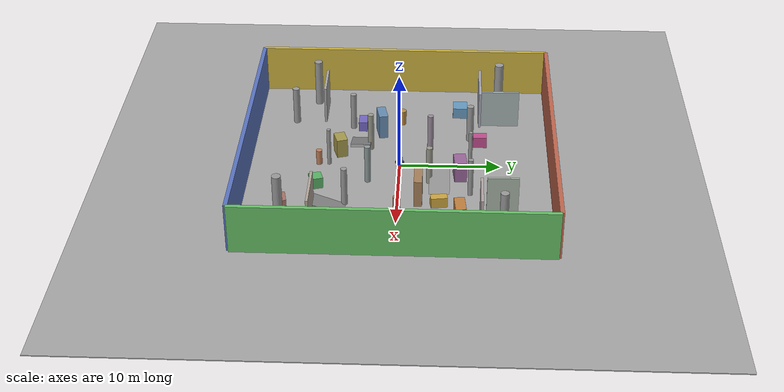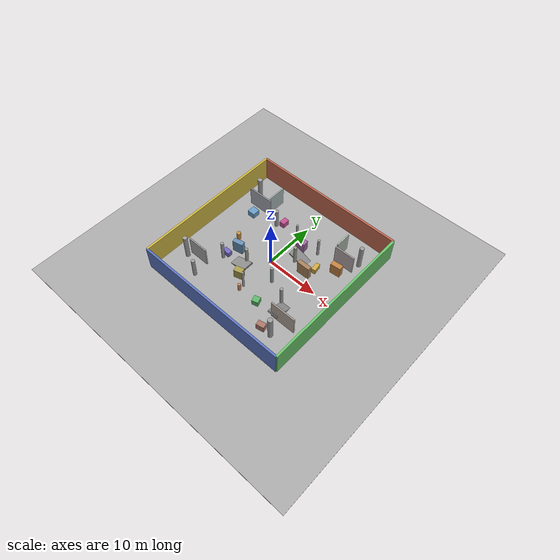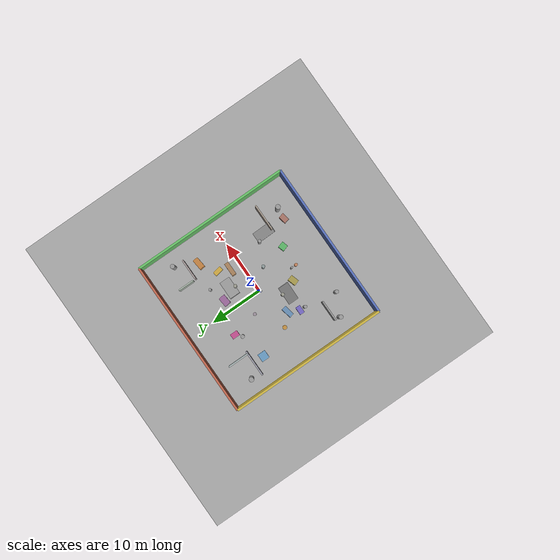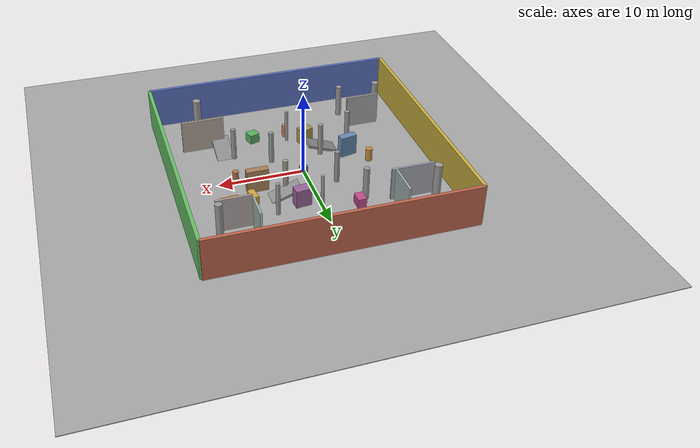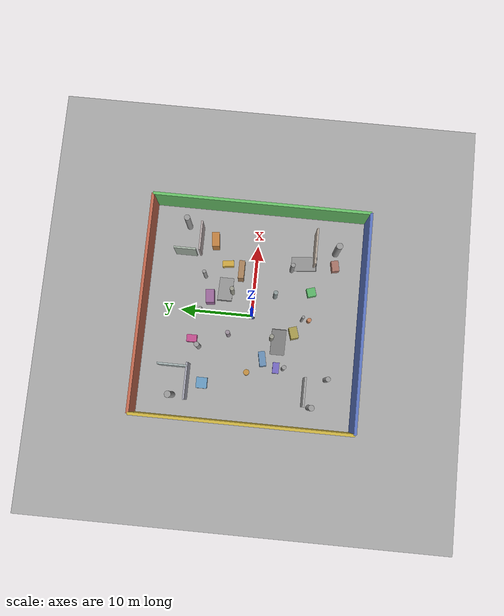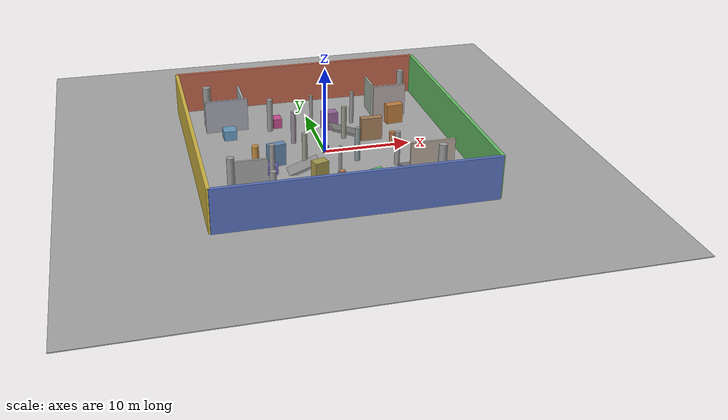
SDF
<sdf version="1.6">
  <world name="factory_open">
    <physics name="1ms" type="ode">
      <max_step_size>0.001</max_step_size>
      <real_time_factor>1.0</real_time_factor>
      <real_time_update_rate>1000</real_time_update_rate>
    </physics>
    <plugin filename="gz-sim-physics-system" name="gz::sim::systems::Physics"/>
    <plugin filename="gz-sim-sensors-system" name="gz::sim::systems::Sensors">
      <render_engine>ogre2</render_engine>
    </plugin>
    <plugin filename="gz-sim-scene-broadcaster-system" name="gz::sim::systems::SceneBroadcaster"/>
    <plugin filename="gz-sim-user-commands-system" name="gz::sim::systems::UserCommands"/>
    <plugin filename="gz-sim-imu-system" name="gz::sim::systems::Imu"/>
    <gravity>0 0 -9.81</gravity>
    <light type="directional" name="sun">
      <cast_shadows>true</cast_shadows><pose>0 0 15 0 0 0</pose>
      <diffuse>0.9 0.9 0.9</diffuse><direction>-0.4 0.2 -0.9</direction>
    </light>
    <model name="ground"><static>true</static>
      <link name="l"><collision name="c"><geometry><box><size>60 60 0.1</size></box></geometry></collision>
        <visual name="v"><geometry><box><size>60 60 0.1</size></box></geometry>
          <material><ambient>0.5 0.5 0.5</ambient><diffuse>0.65 0.65 0.65</diffuse></material></visual></link></model>

<!-- ================================================================
     布局: 30×30 围墙封闭 | 十字主走廊 | 四个开放房间区
     每个房间区有至少2个开口, 保证机器人可通行
================================================================ -->

<!-- ====== 外围围墙 (封闭边界) ====== -->
<model name="wall_n"><static>true</static><pose>0 15 2.5 0 0 0</pose>
  <link name="l"><collision name="c"><geometry><box><size>30 0.4 5</size></box></geometry></collision>
    <visual name="v"><geometry><box><size>30 0.4 5</size></box></geometry>
      <material><ambient>0.7 0.35 0.25</ambient><diffuse>0.75 0.4 0.3</diffuse></material></visual></link></model>
<model name="wall_s"><static>true</static><pose>0 -15 2.5 0 0 0</pose>
  <link name="l"><collision name="c"><geometry><box><size>30 0.4 5</size></box></geometry></collision>
    <visual name="v"><geometry><box><size>30 0.4 5</size></box></geometry>
      <material><ambient>0.3 0.4 0.7</ambient><diffuse>0.35 0.45 0.75</diffuse></material></visual></link></model>
<model name="wall_e"><static>true</static><pose>15 0 2.5 0 0 1.57</pose>
  <link name="l"><collision name="c"><geometry><box><size>30 0.4 5</size></box></geometry></collision>
    <visual name="v"><geometry><box><size>30 0.4 5</size></box></geometry>
      <material><ambient>0.35 0.7 0.35</ambient><diffuse>0.4 0.75 0.4</diffuse></material></visual></link></model>
<model name="wall_w"><static>true</static><pose>-15 0 2.5 0 0 1.57</pose>
  <link name="l"><collision name="c"><geometry><box><size>30 0.4 5</size></box></geometry></collision>
    <visual name="v"><geometry><box><size>30 0.4 5</size></box></geometry>
      <material><ambient>0.75 0.65 0.2</ambient><diffuse>0.8 0.7 0.25</diffuse></material></visual></link></model>

<!-- ====== 内部散落障碍物 (不形成封闭墙) ====== -->
<!-- 四角建筑(短墙+柱子围成, 留开口) -->

<!-- NE 区: 两面短墙 + 柱子 -->
<model name="ne_w1"><static>true</static><pose>10 8 2 0 0 0</pose>
  <link name="l"><collision name="c"><geometry><box><size>4 0.25 4</size></box></geometry></collision>
    <visual name="v"><geometry><box><size>4 0.25 4</size></box></geometry>
      <material><ambient>0.6 0.55 0.55</ambient><diffuse>0.7 0.65 0.65</diffuse></material></visual></link></model>
<model name="ne_w2"><static>true</static><pose>8 10 2 0 0 1.57</pose>
  <link name="l"><collision name="c"><geometry><box><size>3 0.25 4</size></box></geometry></collision>
    <visual name="v"><geometry><box><size>3 0.25 4</size></box></geometry>
      <material><ambient>0.55 0.6 0.55</ambient><diffuse>0.65 0.7 0.65</diffuse></material></visual></link></model>
<model name="ne_p1"><static>true</static><pose>12 10 2.5 0 0 0</pose>
  <link name="l"><collision name="c"><geometry><cylinder><radius>0.4</radius><length>5</length></cylinder></geometry></collision>
    <visual name="v"><geometry><cylinder><radius>0.4</radius><length>5</length></cylinder></geometry>
      <material><ambient>0.5 0.5 0.5</ambient><diffuse>0.6 0.6 0.6</diffuse></material></visual></link></model>
<model name="ne_shelf"><static>true</static><pose>10 6 1.2 0 0 0.1</pose>
  <link name="l"><collision name="c"><geometry><box><size>2 1 2.4</size></box></geometry></collision>
    <visual name="v"><geometry><box><size>2 1 2.4</size></box></geometry>
      <material><ambient>0.7 0.45 0.2</ambient><diffuse>0.75 0.5 0.25</diffuse></material></visual></link></model>

<!-- NW 区 -->
<model name="nw_w1"><static>true</static><pose>-10 8 2 0 0 0</pose>
  <link name="l"><collision name="c"><geometry><box><size>5 0.25 4</size></box></geometry></collision>
    <visual name="v"><geometry><box><size>5 0.25 4</size></box></geometry>
      <material><ambient>0.55 0.55 0.6</ambient><diffuse>0.65 0.65 0.7</diffuse></material></visual></link></model>
<model name="nw_w2"><static>true</static><pose>-8 10 2 0 0 1.57</pose>
  <link name="l"><collision name="c"><geometry><box><size>4 0.25 4</size></box></geometry></collision>
    <visual name="v"><geometry><box><size>4 0.25 4</size></box></geometry>
      <material><ambient>0.55 0.6 0.6</ambient><diffuse>0.65 0.7 0.7</diffuse></material></visual></link></model>
<model name="nw_p1"><static>true</static><pose>-12 10 2.5 0 0 0</pose>
  <link name="l"><collision name="c"><geometry><cylinder><radius>0.45</radius><length>5</length></cylinder></geometry></collision>
    <visual name="v"><geometry><cylinder><radius>0.45</radius><length>5</length></cylinder></geometry>
      <material><ambient>0.5 0.5 0.5</ambient><diffuse>0.6 0.6 0.6</diffuse></material></visual></link></model>
<model name="nw_cr1"><static>true</static><pose>-10 6 0.6 0 0 0</pose>
  <link name="l"><collision name="c"><geometry><box><size>1.5 1.5 1.2</size></box></geometry></collision>
    <visual name="v"><geometry><box><size>1.5 1.5 1.2</size></box></geometry>
      <material><ambient>0.35 0.55 0.7</ambient><diffuse>0.4 0.6 0.75</diffuse></material></visual></link></model>

<!-- SW 区 -->
<model name="sw_w1"><static>true</static><pose>-10 -8 2 0 0 0</pose>
  <link name="l"><collision name="c"><geometry><box><size>4 0.25 4</size></box></geometry></collision>
    <visual name="v"><geometry><box><size>4 0.25 4</size></box></geometry>
      <material><ambient>0.55 0.55 0.55</ambient><diffuse>0.65 0.65 0.65</diffuse></material></visual></link></model>
<model name="sw_p1"><static>true</static><pose>-12 -9 2.5 0 0 0</pose>
  <link name="l"><collision name="c"><geometry><cylinder><radius>0.4</radius><length>5</length></cylinder></geometry></collision>
    <visual name="v"><geometry><cylinder><radius>0.4</radius><length>5</length></cylinder></geometry>
      <material><ambient>0.5 0.5 0.5</ambient><diffuse>0.6 0.6 0.6</diffuse></material></visual></link></model>
<model name="sw_p2"><static>true</static><pose>-8 -11 2 0 0 0</pose>
  <link name="l"><collision name="c"><geometry><cylinder><radius>0.35</radius><length>4</length></cylinder></geometry></collision>
    <visual name="v"><geometry><cylinder><radius>0.35</radius><length>4</length></cylinder></geometry>
      <material><ambient>0.5 0.5 0.5</ambient><diffuse>0.6 0.6 0.6</diffuse></material></visual></link></model>

<!-- SE 区 -->
<model name="se_w1"><static>true</static><pose>10 -8 2 0 0 0</pose>
  <link name="l"><collision name="c"><geometry><box><size>5 0.25 4</size></box></geometry></collision>
    <visual name="v"><geometry><box><size>5 0.25 4</size></box></geometry>
      <material><ambient>0.6 0.55 0.5</ambient><diffuse>0.7 0.65 0.6</diffuse></material></visual></link></model>
<model name="se_p1"><static>true</static><pose>10 -11 2.5 0 0 0</pose>
  <link name="l"><collision name="c"><geometry><cylinder><radius>0.45</radius><length>5</length></cylinder></geometry></collision>
    <visual name="v"><geometry><cylinder><radius>0.45</radius><length>5</length></cylinder></geometry>
      <material><ambient>0.5 0.5 0.5</ambient><diffuse>0.6 0.6 0.6</diffuse></material></visual></link></model>
<model name="se_cr1"><static>true</static><pose>8 -11 0.7 0 0 0.2</pose>
  <link name="l"><collision name="c"><geometry><box><size>1.5 1 1.4</size></box></geometry></collision>
    <visual name="v"><geometry><box><size>1.5 1 1.4</size></box></geometry>
      <material><ambient>0.6 0.4 0.35</ambient><diffuse>0.65 0.45 0.4</diffuse></material></visual></link></model>

<!-- ====== 中央十字通道 ====== -->
<!-- 四根柱子界定中央十字区域 -->
<model name="cc_nw"><static>true</static><pose>-3 3 2 0 0 0</pose>
  <link name="l"><collision name="c"><geometry><cylinder><radius>0.3</radius><length>4</length></cylinder></geometry></collision>
    <visual name="v"><geometry><cylinder><radius>0.3</radius><length>4</length></cylinder></geometry>
      <material><ambient>0.5 0.45 0.5</ambient><diffuse>0.6 0.55 0.6</diffuse></material></visual></link></model>
<model name="cc_ne"><static>true</static><pose>3 3 2 0 0 0</pose>
  <link name="l"><collision name="c"><geometry><cylinder><radius>0.3</radius><length>4</length></cylinder></geometry></collision>
    <visual name="v"><geometry><cylinder><radius>0.3</radius><length>4</length></cylinder></geometry>
      <material><ambient>0.5 0.5 0.45</ambient><diffuse>0.6 0.6 0.55</diffuse></material></visual></link></model>
<model name="cc_sw"><static>true</static><pose>-3 -3 2 0 0 0</pose>
  <link name="l"><collision name="c"><geometry><cylinder><radius>0.3</radius><length>4</length></cylinder></geometry></collision>
    <visual name="v"><geometry><cylinder><radius>0.3</radius><length>4</length></cylinder></geometry>
      <material><ambient>0.5 0.5 0.45</ambient><diffuse>0.6 0.6 0.55</diffuse></material></visual></link></model>
<model name="cc_se"><static>true</static><pose>3 -3 2 0 0 0</pose>
  <link name="l"><collision name="c"><geometry><cylinder><radius>0.3</radius><length>4</length></cylinder></geometry></collision>
    <visual name="v"><geometry><cylinder><radius>0.3</radius><length>4</length></cylinder></geometry>
      <material><ambient>0.45 0.5 0.5</ambient><diffuse>0.55 0.6 0.6</diffuse></material></visual></link></model>

<!-- ====== 散布柱子 ====== -->
<model name="p_a"><static>true</static><pose>5 7 2 0 0 0</pose>
  <link name="l"><collision name="c"><geometry><cylinder><radius>0.25</radius><length>4</length></cylinder></geometry></collision>
    <visual name="v"><geometry><cylinder><radius>0.25</radius><length>4</length></cylinder></geometry>
      <material><ambient>0.5 0.5 0.5</ambient><diffuse>0.6 0.6 0.6</diffuse></material></visual></link></model>
<model name="p_b"><static>true</static><pose>-5 7 2 0 0 0</pose>
  <link name="l"><collision name="c"><geometry><cylinder><radius>0.35</radius><length>4</length></cylinder></geometry></collision>
    <visual name="v"><geometry><cylinder><radius>0.35</radius><length>4</length></cylinder></geometry>
      <material><ambient>0.5 0.5 0.5</ambient><diffuse>0.6 0.6 0.6</diffuse></material></visual></link></model>
<model name="p_c"><static>true</static><pose>7 -5 2 0 0 0</pose>
  <link name="l"><collision name="c"><geometry><cylinder><radius>0.3</radius><length>4</length></cylinder></geometry></collision>
    <visual name="v"><geometry><cylinder><radius>0.3</radius><length>4</length></cylinder></geometry>
      <material><ambient>0.5 0.5 0.5</ambient><diffuse>0.6 0.6 0.6</diffuse></material></visual></link></model>
<model name="p_d"><static>true</static><pose>-7 -5 2 0 0 0</pose>
  <link name="l"><collision name="c"><geometry><cylinder><radius>0.3</radius><length>4</length></cylinder></geometry></collision>
    <visual name="v"><geometry><cylinder><radius>0.3</radius><length>4</length></cylinder></geometry>
      <material><ambient>0.5 0.5 0.5</ambient><diffuse>0.6 0.6 0.6</diffuse></material></visual></link></model>
<model name="p_e"><static>true</static><pose>0 7 2 0 0 0</pose>
  <link name="l"><collision name="c"><geometry><cylinder><radius>0.2</radius><length>4</length></cylinder></geometry></collision>
    <visual name="v"><geometry><cylinder><radius>0.2</radius><length>4</length></cylinder></geometry>
      <material><ambient>0.5 0.5 0.5</ambient><diffuse>0.6 0.6 0.6</diffuse></material></visual></link></model>
<model name="p_f"><static>true</static><pose>0 -7 2 0 0 0</pose>
  <link name="l"><collision name="c"><geometry><cylinder><radius>0.2</radius><length>4</length></cylinder></geometry></collision>
    <visual name="v"><geometry><cylinder><radius>0.2</radius><length>4</length></cylinder></geometry>
      <material><ambient>0.5 0.5 0.5</ambient><diffuse>0.6 0.6 0.6</diffuse></material></visual></link></model>

<!-- ====== 散落箱子和货架 ====== -->
<model name="cr_a"><static>true</static><pose>4 -8 0.6 0 0 0.3</pose>
  <link name="l"><collision name="c"><geometry><box><size>1.2 1.2 1.2</size></box></geometry></collision>
    <visual name="v"><geometry><box><size>1.2 1.2 1.2</size></box></geometry>
      <material><ambient>0.3 0.65 0.35</ambient><diffuse>0.35 0.7 0.4</diffuse></material></visual></link></model>
<model name="cr_b"><static>true</static><pose>-4 8 0.6 0 0 0</pose>
  <link name="l"><collision name="c"><geometry><box><size>1 1.4 1.2</size></box></geometry></collision>
    <visual name="v"><geometry><box><size>1 1.4 1.2</size></box></geometry>
      <material><ambient>0.7 0.25 0.5</ambient><diffuse>0.75 0.3 0.55</diffuse></material></visual></link></model>
<model name="cr_c"><static>true</static><pose>7 4 0.55 0 0 0.15</pose>
  <link name="l"><collision name="c"><geometry><box><size>0.8 1.6 1.1</size></box></geometry></collision>
    <visual name="v"><geometry><box><size>0.8 1.6 1.1</size></box></geometry>
      <material><ambient>0.75 0.6 0.2</ambient><diffuse>0.8 0.65 0.25</diffuse></material></visual></link></model>
<model name="cr_d"><static>true</static><pose>-7 -4 0.55 0 0 0</pose>
  <link name="l"><collision name="c"><geometry><box><size>1.5 0.9 1.1</size></box></geometry></collision>
    <visual name="v"><geometry><box><size>1.5 0.9 1.1</size></box></geometry>
      <material><ambient>0.4 0.35 0.7</ambient><diffuse>0.45 0.4 0.75</diffuse></material></visual></link></model>
<model name="sh_A"><static>true</static><pose>6 2 1.4 0 0 0</pose>
  <link name="l"><collision name="c"><geometry><box><size>2.5 0.8 2.8</size></box></geometry></collision>
    <visual name="v"><geometry><box><size>2.5 0.8 2.8</size></box></geometry>
      <material><ambient>0.6 0.45 0.3</ambient><diffuse>0.65 0.5 0.35</diffuse></material></visual></link></model>
<model name="sh_B"><static>true</static><pose>-6 -2 1.3 0 0 0.2</pose>
  <link name="l"><collision name="c"><geometry><box><size>2 0.9 2.6</size></box></geometry></collision>
    <visual name="v"><geometry><box><size>2 0.9 2.6</size></box></geometry>
      <material><ambient>0.35 0.5 0.65</ambient><diffuse>0.4 0.55 0.7</diffuse></material></visual></link></model>
<model name="sh_C"><static>true</static><pose>2 6 1.1 0 0 0.1</pose>
  <link name="l"><collision name="c"><geometry><box><size>1.8 1.2 2.2</size></box></geometry></collision>
    <visual name="v"><geometry><box><size>1.8 1.2 2.2</size></box></geometry>
      <material><ambient>0.55 0.35 0.55</ambient><diffuse>0.6 0.4 0.6</diffuse></material></visual></link></model>
<model name="sh_D"><static>true</static><pose>-2 -6 1.0 0 0 0.3</pose>
  <link name="l"><collision name="c"><geometry><box><size>1.6 1.1 2</size></box></geometry></collision>
    <visual name="v"><geometry><box><size>1.6 1.1 2</size></box></geometry>
      <material><ambient>0.6 0.55 0.25</ambient><diffuse>0.65 0.6 0.3</diffuse></material></visual></link></model>

<!-- 油桶 -->
<model name="brl_1"><static>true</static><pose>-8 0 0.8 0 0 0</pose>
  <link name="l"><collision name="c"><geometry><cylinder><radius>0.4</radius><length>1.6</length></cylinder></geometry></collision>
    <visual name="v"><geometry><cylinder><radius>0.4</radius><length>1.6</length></cylinder></geometry>
      <material><ambient>0.7 0.5 0.2</ambient><diffuse>0.75 0.55 0.25</diffuse></material></visual></link></model>
<model name="brl_2"><static>true</static><pose>8 0 0.8 0 0 0</pose>
  <link name="l"><collision name="c"><geometry><cylinder><radius>0.35</radius><length>1.6</length></cylinder></geometry></collision>
    <visual name="v"><geometry><cylinder><radius>0.35</radius><length>1.6</length></cylinder></geometry>
      <material><ambient>0.65 0.4 0.25</ambient><diffuse>0.7 0.45 0.3</diffuse></material></visual></link></model>
<model name="brl_3"><static>true</static><pose>0 -8 0.8 0 0 0</pose>
  <link name="l"><collision name="c"><geometry><cylinder><radius>0.3</radius><length>1.6</length></cylinder></geometry></collision>
    <visual name="v"><geometry><cylinder><radius>0.3</radius><length>1.6</length></cylinder></geometry>
      <material><ambient>0.7 0.45 0.3</ambient><diffuse>0.75 0.5 0.35</diffuse></material></visual></link></model>

<!-- 斜坡 -->
<model name="ramp_1"><static>true</static><pose>4 4 0.3 0 0.35 0</pose>
  <link name="l"><collision name="c"><geometry><box><size>5 2 0.3</size></box></geometry></collision>
    <visual name="v"><geometry><box><size>5 2 0.3</size></box></geometry>
      <material><ambient>0.45 0.45 0.45</ambient><diffuse>0.55 0.55 0.55</diffuse></material></visual></link></model>
<model name="ramp_2"><static>true</static><pose>-4 -4 0.3 0 -0.35 0</pose>
  <link name="l"><collision name="c"><geometry><box><size>5 2 0.3</size></box></geometry></collision>
    <visual name="v"><geometry><box><size>5 2 0.3</size></box></geometry>
      <material><ambient>0.45 0.45 0.45</ambient><diffuse>0.55 0.55 0.55</diffuse></material></visual></link></model>
<model name="ramp_3"><static>true</static><pose>8 -6 0.3 0 0.35 1.57</pose>
  <link name="l"><collision name="c"><geometry><box><size>5 2 0.3</size></box></geometry></collision>
    <visual name="v"><geometry><box><size>5 2 0.3</size></box></geometry>
      <material><ambient>0.45 0.45 0.45</ambient><diffuse>0.55 0.55 0.55</diffuse></material></visual></link></model>

<!-- ====== 四轮小车 ====== -->
<model name="diff_car">
  <pose>0 0 0.55 0 0 0</pose>
  <link name="chassis">
    <inertial><mass>8.0</mass><inertia><ixx>1.5</ixx><iyy>1.5</iyy><izz>1.5</izz></inertia></inertial>
    <collision name="c"><geometry><box><size>0.9 0.6 0.3</size></box></geometry><surface><friction><ode><mu>1.0</mu><mu2>1.0</mu2></ode></friction></surface></collision>
    <visual name="v"><geometry><box><size>0.9 0.6 0.3</size></box></geometry><material><ambient>0.2 0.25 0.45</ambient><diffuse>0.3 0.35 0.6</diffuse></material></visual>
    <sensor name="imu_sensor" type="imu"><topic>/imu0</topic><always_on>1</always_on><update_rate>400</update_rate></sensor>
    <visual name="imu_tag"><pose>0.25 0.12 0.02 0 0 0</pose><geometry><box><size>0.05 0.04 0.03</size></box></geometry><material><ambient>0.1 0.3 0.9</ambient><diffuse>0.1 0.4 1.0</diffuse></material></visual>
  </link>
  <link name="lidar_tower">
    <pose>0 0 0.28 0 0 0</pose>
    <inertial><mass>0.3</mass><inertia><ixx>0.01</ixx><iyy>0.01</iyy><izz>0.01</izz></inertia></inertial>
    <visual name="v"><geometry><cylinder><radius>0.1</radius><length>0.1</length></cylinder></geometry><material><ambient>0.1 0.1 0.1</ambient><diffuse>0.15 0.15 0.15</diffuse></material></visual>
    <sensor name="lidar_sensor" type="gpu_lidar"><topic>/lidar0</topic><update_rate>10</update_rate>
      <lidar><scan><horizontal><samples>900</samples><resolution>1</resolution><min_angle>-3.14159</min_angle><max_angle>3.14159</max_angle></horizontal>
      <vertical><samples>16</samples><resolution>1</resolution><min_angle>-0.261799</min_angle><max_angle>0.261799</max_angle></vertical></scan>
      <range><min>0.3</min><max>50.0</max><resolution>0.02</resolution></range><noise><type>gaussian</type><mean>0</mean><stddev>0.03</stddev></noise></lidar>
      <always_on>1</always_on><visualize>true</visualize></sensor>
  </link>
  <joint name="lidar_joint" type="fixed"><parent>chassis</parent><child>lidar_tower</child></joint>
  <plugin filename="gz-sim-diff-drive-system" name="gz::sim::systems::DiffDrive">
    <left_joint>rear_left_joint</left_joint><right_joint>rear_right_joint</right_joint>
    <wheel_separation>0.5</wheel_separation><wheel_radius>0.2</wheel_radius>
    <max_linear_acceleration>2.0</max_linear_acceleration><max_angular_acceleration>3.0</max_angular_acceleration>
    <odom_publish_frequency>30</odom_publish_frequency></plugin>
  <link name="rear_left_wheel"><pose>-0.25 -0.25 -0.35 0 0 0</pose>
    <inertial><mass>0.8</mass><inertia><ixx>0.008</ixx><iyy>0.008</iyy><izz>0.008</izz></inertia></inertial>
    <collision name="c"><geometry><sphere><radius>0.2</radius></sphere></geometry><surface><friction><ode><mu>100</mu><mu2>100</mu2></ode></friction></surface></collision>
    <visual name="v"><geometry><sphere><radius>0.2</radius></sphere></geometry><material><ambient>0.1 0.1 0.1</ambient><diffuse>0.15 0.15 0.15</diffuse></material></visual></link>
  <joint name="rear_left_joint" type="revolute"><parent>chassis</parent><child>rear_left_wheel</child><axis><xyz>0 1 0</xyz></axis></joint>
  <link name="rear_right_wheel"><pose>-0.25 0.25 -0.35 0 0 0</pose>
    <inertial><mass>0.8</mass><inertia><ixx>0.008</ixx><iyy>0.008</iyy><izz>0.008</izz></inertia></inertial>
    <collision name="c"><geometry><sphere><radius>0.2</radius></sphere></geometry><surface><friction><ode><mu>100</mu><mu2>100</mu2></ode></friction></surface></collision>
    <visual name="v"><geometry><sphere><radius>0.2</radius></sphere></geometry><material><ambient>0.1 0.1 0.1</ambient><diffuse>0.15 0.15 0.15</diffuse></material></visual></link>
  <joint name="rear_right_joint" type="revolute"><parent>chassis</parent><child>rear_right_wheel</child><axis><xyz>0 1 0</xyz></axis></joint>
  <link name="front_left_caster"><pose>0.32 -0.25 -0.38 0 0 0</pose>
    <inertial><mass>0.05</mass><inertia><ixx>0.0005</ixx><iyy>0.0005</iyy><izz>0.0005</izz></inertia></inertial>
    <collision name="c"><geometry><sphere><radius>0.08</radius></sphere></geometry></collision>
    <visual name="v"><geometry><sphere><radius>0.08</radius></sphere></geometry><material><ambient>0.05 0.05 0.05</ambient><diffuse>0.1 0.1 0.1</diffuse></material></visual></link>
  <joint name="front_left_caster_joint" type="ball"><parent>chassis</parent><child>front_left_caster</child></joint>
  <link name="front_right_caster"><pose>0.32 0.25 -0.38 0 0 0</pose>
    <inertial><mass>0.05</mass><inertia><ixx>0.0005</ixx><iyy>0.0005</iyy><izz>0.0005</izz></inertia></inertial>
    <collision name="c"><geometry><sphere><radius>0.08</radius></sphere></geometry></collision>
    <visual name="v"><geometry><sphere><radius>0.08</radius></sphere></geometry><material><ambient>0.05 0.05 0.05</ambient><diffuse>0.1 0.1 0.1</diffuse></material></visual></link>
  <joint name="front_right_caster_joint" type="ball"><parent>chassis</parent><child>front_right_caster</child></joint>
</model>

  </world>
</sdf>
